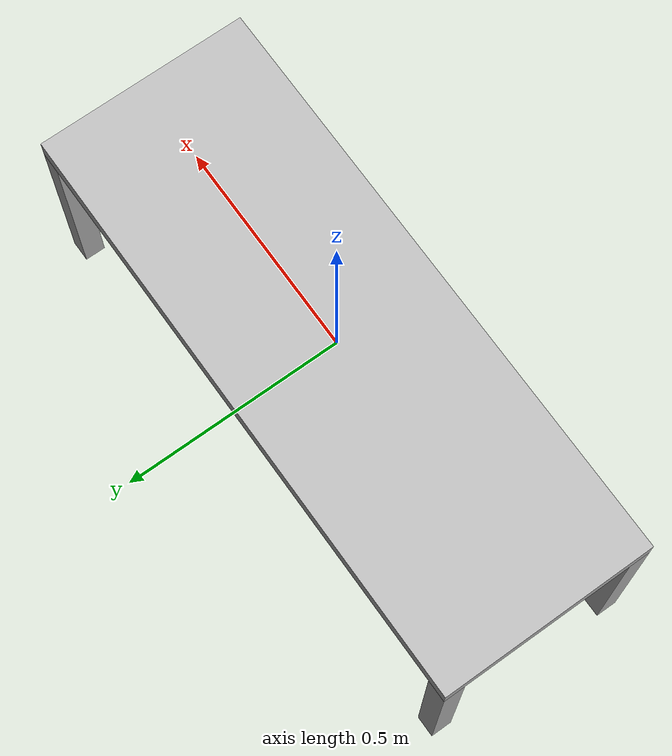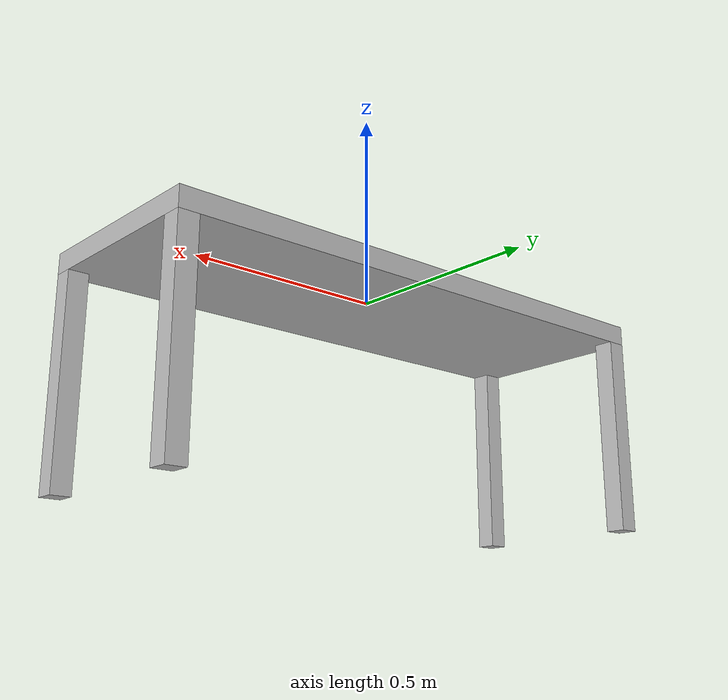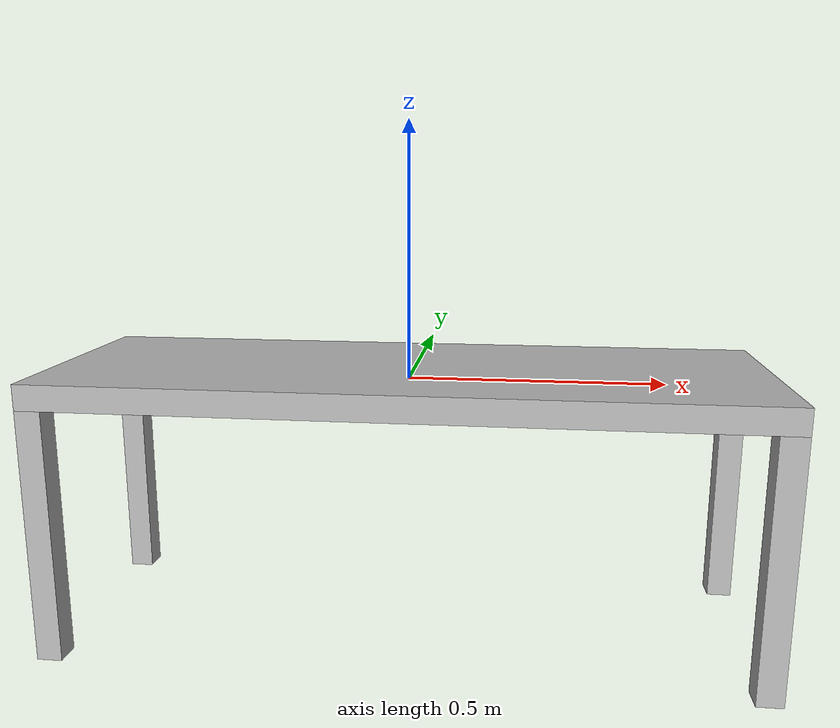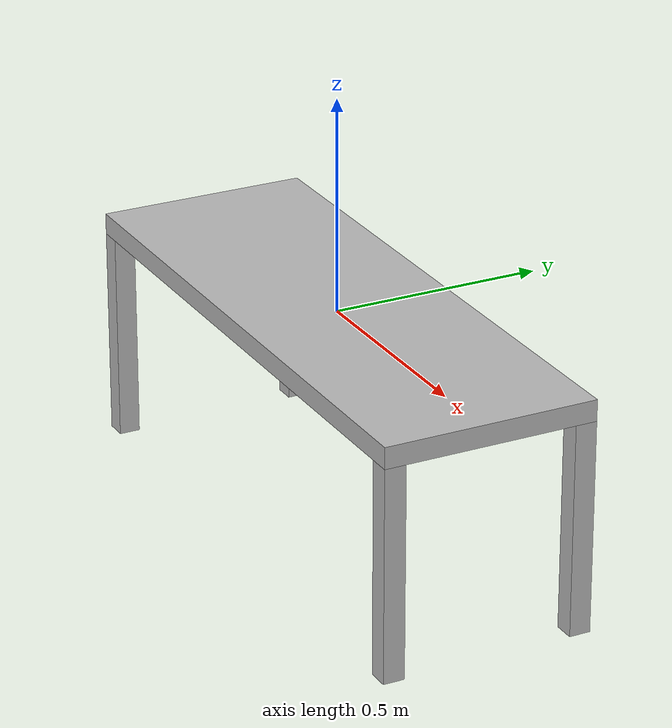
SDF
<?xml version="1.0" ?>
<sdf version="1.5">
  <model name="library_table">
    <link name="table">
      <visual name="table_visual">
        <pose>0 0 0 0 0 0</pose>
        <geometry>
          <box>
            <size>1.4 0.5 0.05</size>
          </box>
        </geometry>
        <material>
          <ambient>0.0, 0.0, 0.0.</ambient> <!-- Optional: Adjust the color to your preference -->
          <diffuse>0.0, 0.0, 0.0.</diffuse> <!-- This is the brown color you provided -->
          <specular>0.5 0.5 0.5 1</specular> <!-- Optional: Adjust the color to your preference -->
        </material>
      </visual>
      <collision name="table_collision">
        <pose>0 0 0 0 0 0</pose>
        <geometry>
          <box>
            <size>1.4 0.5 0.05</size>
          </box>
        </geometry>
        <drake:proximity_properties>
          <drake:compliant_hydroelastic/>
          <drake:hydroelastic_modulus>1.0e8</drake:hydroelastic_modulus>
          <drake:mu_dynamic>0.35</drake:mu_dynamic>
          <drake:mu_static>0.35</drake:mu_static>
        </drake:proximity_properties>
      </collision>
      <visual name="leg_top_left_visual">
        <pose> 0.675 0.225 -0.275 0 0 0</pose>
        <geometry>
          <box>
            <size> 0.05 0.05 0.5</size>
          </box>
        </geometry>
      </visual>
      <collision name="leg_top_left_collision">
        <pose> 0.675 0.225 -0.275 0 0 0</pose>
        <geometry>
          <box>
            <size>0.05 0.05 0.5</size>
          </box>
        </geometry>
        <drake:proximity_properties>
          <drake:compliant_hydroelastic/>
          <drake:hydroelastic_modulus>1.0e8</drake:hydroelastic_modulus>
        </drake:proximity_properties>
      </collision>
      <visual name="leg_top_right_visual">
        <pose> 0.675 -0.225 -0.275 0 0 0</pose>
        <geometry>
          <box>
            <size> 0.05 0.05 0.5</size>
          </box>
        </geometry>
      </visual>
      <collision name="leg_top_right_collision">
        <pose> 0.675 -0.225 -0.275 0 0 0</pose>
        <geometry>
          <box>
            <size>0.05 0.05 0.5</size>
          </box>
        </geometry>
        <drake:proximity_properties>
          <drake:compliant_hydroelastic/>
          <drake:hydroelastic_modulus>1.0e8</drake:hydroelastic_modulus>
        </drake:proximity_properties>
      </collision>
      <visual name="leg_bottom_right_visual">
        <pose> -0.675 -0.225 -0.275 0 0 0</pose>
        <geometry>
          <box>
            <size> 0.05 0.05 0.5</size>
          </box>
        </geometry>
      </visual>
      <collision name="leg_bottom_right_collision">
        <pose> -0.675 -0.225 -0.275 0 0 0</pose>
        <geometry>
          <box>
            <size>0.05 0.05 0.5</size>
          </box>
        </geometry>
        <drake:proximity_properties>
          <drake:compliant_hydroelastic/>
          <drake:hydroelastic_modulus>1.0e8</drake:hydroelastic_modulus>
        </drake:proximity_properties>
      </collision>
      <visual name="leg_bottom_left_visual">
        <pose> -0.675 0.225 -0.275 0 0 0</pose>
        <geometry>
          <box>
            <size> 0.05 0.05 0.5</size>
          </box>
        </geometry>
      </visual>
      <collision name="leg_bottom_left_collision">
        <pose> -0.475 0.225 -0.275 0 0 0</pose>
        <geometry>
          <box>
            <size>0.05 0.05 0.5</size>
          </box>
        </geometry>
        <drake:proximity_properties>
          <drake:compliant_hydroelastic/>
          <drake:hydroelastic_modulus>1.0e8</drake:hydroelastic_modulus>
        </drake:proximity_properties>
      </collision>
    </link>
  </model>
</sdf>
